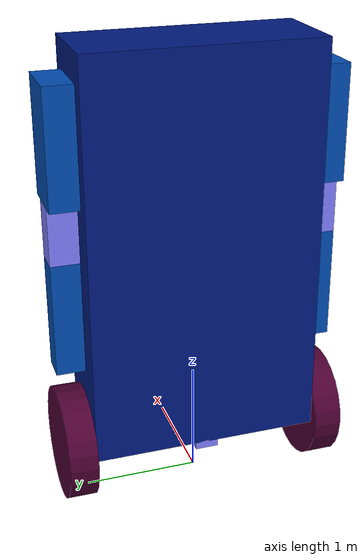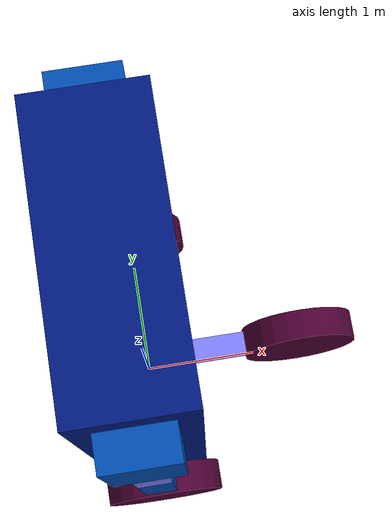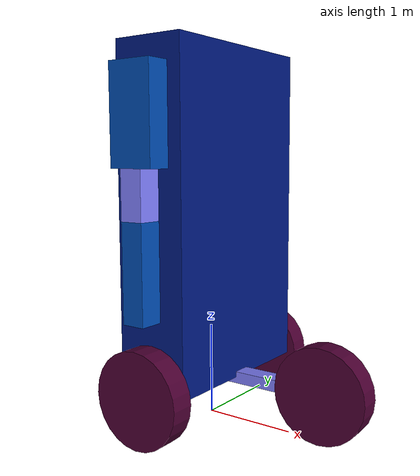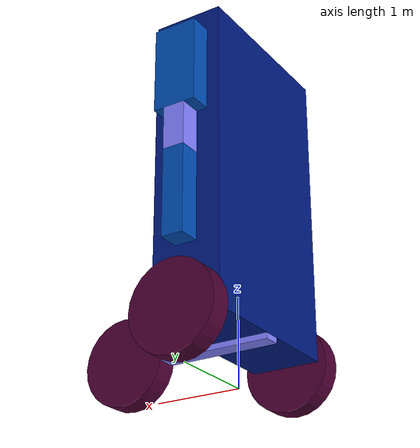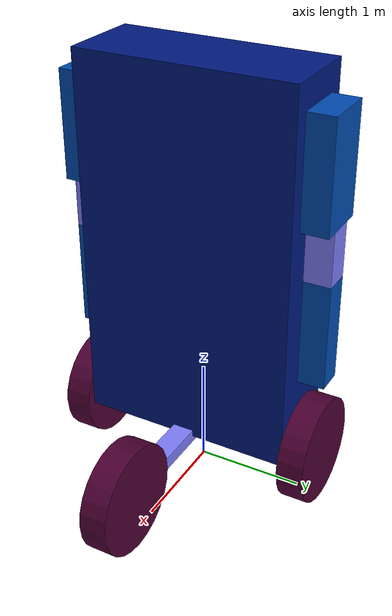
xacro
<?xml version="1.0"?>
<robot xmlns:xacro="http://www.ros.org/wiki/xacro" name="sketch_follower">

    <xacro:include filename="$(find robot_description)/urdf/base.xacro" />
    <xacro:include filename="$(find robot_description)/urdf/arm.xacro" />
    <xacro:include filename="$(find robot_description)/urdf/wheel.xacro" />
    <xacro:include filename="$(find robot_description)/urdf/ros2_control.xacro" />

    <xacro:wheeled_humanoid_ros2_control />

    <!-- map -> odom - Localization corrections (ex. SLAM) -->
    <link name="map" />
    <!-- odom -> base - Robot motion relative to starting position -->
    <link name="odom" />

    <joint name="map_odom_joint" type="fixed">
        <origin xyz="0.0 0.0 0.0" rpy="0.0 0.0 0" />
        <parent link="map" />
        <child link="odom" />
    </joint>

    <xacro:base />

    <xacro:arm name="left_arm" y_offset="1.125" />
    <xacro:arm name="right_arm" y_offset="-1.125" />

    <xacro:wheel index="1" parent_link="base" y_offset="1.125" z_offset="-1.75" />
    <xacro:wheel index="2" parent_link="base" y_offset="-1.125" z_offset="-1.75" />

    <link name="wheel_3_base">
        <visual>
            <origin xyz="0.0 0.0 0.0" rpy="0.0 0.0 0.0" />
            <geometry>
                <box size="1.8 0.2 0.125" />
            </geometry>
            <material name="white" />
        </visual>
    </link>

    <joint name="base_wheel_3_base_joint" type="fixed">
        <parent link="base" />
        <child link="wheel_3_base" />
        <origin xyz="0.5 0.0 -1.75" rpy="0.0 0.0 0.0" />
        <axis xyz="1 0 0" />
    </joint>

    <link name="wheel_3_steering">
    </link>

    <joint name="wheel_3_base_wheel_3_steering_joint" type="continuous">
        <parent link="wheel_3_base" />
        <child link="wheel_3_steering" />
        <origin xyz="0.9 0 0" rpy="0.0 0.0 0.0" />
        <axis xyz="0 0 1" />
    </joint>

    <xacro:wheel index="3" parent_link="wheel_3_steering" y_offset="0" z_offset="0" />

</robot>

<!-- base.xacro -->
<robot xmlns:xacro="http://www.ros.org/wiki/xacro">

    <material name="blue">
        <color rgba="0 0.1 0.5 1" />
    </material>

    <xacro:macro name="base">
        <link name="base">
            <visual>
                <origin xyz="0.0 0.0 0.0" rpy="0.0 0.0 0.0" />
                <geometry>
                    <box size="0.8 2 3.5" />
                </geometry>
                <material name="blue" />
            </visual>
        </link>

        <link name="base_wrapper" />

        <joint name="base_wrapper_base_joint" type="fixed">
            <origin xyz="0.0 0.0 2.25" rpy="0.0 0.0 0" />
            <parent link="base_wrapper" />
            <child link="base" />
        </joint>

        <joint name="odom_base_wrapper_joint" type="fixed">
            <origin xyz="0.0 0.0 0.0" rpy="0.0 0.0 0" />
            <parent link="odom" />
            <child link="base_wrapper" />
        </joint>
    </xacro:macro>

</robot>

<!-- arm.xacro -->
<robot xmlns:xacro="http://www.ros.org/wiki/xacro">

    <material name="light-blue">
        <color rgba="0 0.3 0.7 1" />
    </material>
    <material name="white">
        <color rgba="0.5 0.5 1 1" />
    </material>

    <xacro:macro name="arm" params="name y_offset">
        <link name="${name}_1">
            <visual>
                <origin xyz="0.0 0.0 -0.5" rpy="0.0 0.0 0.0" />
                <geometry>
                    <box size="0.5 0.25 1" />
                </geometry>
                <material name="light-blue" />
            </visual>
        </link>

        <joint name="base_${name}_1_joint" type="continuous">
            <parent link="base" />
            <child link="${name}_1" />
            <origin xyz="0.0 ${y_offset} 1.5" rpy="0.0 0.0 0.0" />
            <axis xyz="0 1 0" />
        </joint>

        <link name="${name}_2">
            <visual>
                <origin xyz="0.0 0.0 -0.25" rpy="0.0 0.0 0.0" />
                <geometry>
                    <box size="0.25 0.25 0.5" />
                </geometry>
                <material name="white" />
            </visual>
        </link>

        <joint name="${name}_1_${name}_2_joint" type="continuous">
            <parent link="${name}_1" />
            <child link="${name}_2" />
            <origin xyz="0.0 0 -1" rpy="0.0 0.0 0.0" />
            <axis xyz="0 0 1" />
        </joint>

        <link name="${name}_3">
            <visual>
                <origin xyz="0.0 0.0 -0.5" rpy="0.0 0.0 0.0" />
                <geometry>
                    <box size="0.25 0.25 1" />
                </geometry>
                <material name="light-blue" />
            </visual>
        </link>

        <joint name="${name}_2_${name}_3_joint" type="continuous">
            <parent link="${name}_2" />
            <child link="${name}_3" />
            <origin xyz="0.0 0 -0.5" rpy="0.0 0.0 0.0" />
            <axis xyz="1 0 0" />
        </joint>

        <link name="${name}_eef">
        </link>

        <joint name="${name}_3_${name}_eef_joint" type="fixed">
            <parent link="${name}_3" />
            <child link="${name}_eef" />
            <origin xyz="0.0 0 -1" rpy="0.0 0.0 0.0" />
        </joint>

    </xacro:macro>

</robot>

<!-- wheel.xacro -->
<robot xmlns:xacro="http://www.ros.org/wiki/xacro">

    <material name="pink">
        <color rgba="0.3 0 0.2 1"/>
    </material>

    <xacro:macro name="wheel" params="index y_offset z_offset parent_link">
        <link name="wheel_${index}">
            <visual>
                <origin xyz="0.0 0.0 0.0" rpy="1.575 0.0 0.0"/>
                <geometry>
                    <cylinder length="0.25" radius="0.5"/>
                </geometry>
                <material name="pink"/>
            </visual>
        </link>

        <joint name="${parent_link}_wheel_${index}_joint" type="continuous">
            <parent link="${parent_link}"/>
            <child link="wheel_${index}"/>
            <origin xyz="0.0 ${y_offset} ${z_offset}" rpy="0.0 0.0 0.0"/>
            <axis xyz="0 1 0"/>
        </joint>
    </xacro:macro>

</robot>
